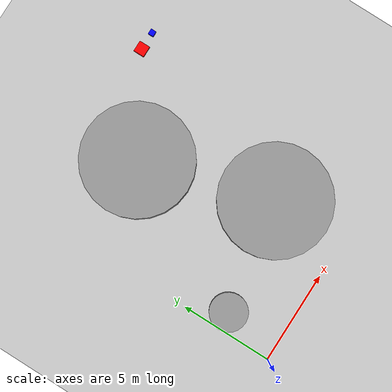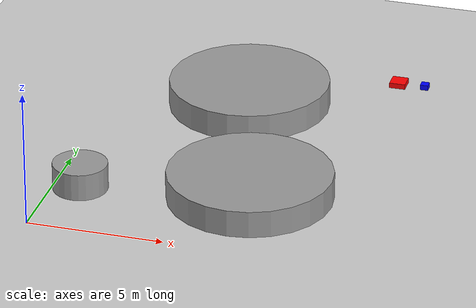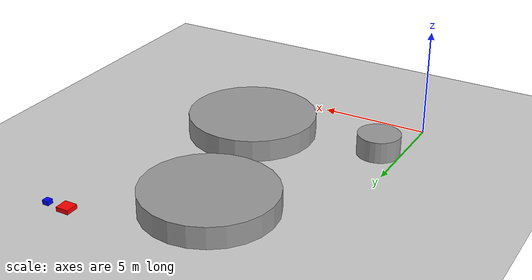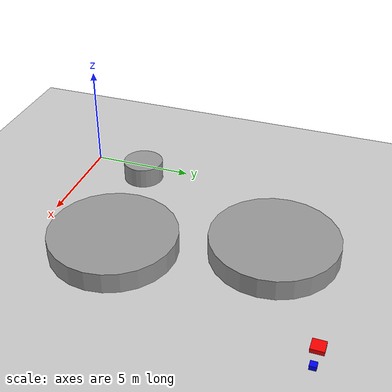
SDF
<sdf version="1.7">
 <world name="default">
  <light name="sun" type="directional">
   <pose>0 0 10 0 -0 0</pose>
   <diffuse>0.8 0.8 0.8 1</diffuse>
   <specular>0.2 0.2 0.2 1</specular>
   <attenuation>
    <range>1000</range>
    <constant>0.9</constant>
    <linear>0.01</linear>
    <quadratic>0.001</quadratic>
   </attenuation>
   <direction>-0.5 0.1 -0.9</direction>
   <spot><inner_angle>0</inner_angle><outer_angle>0</outer_angle><falloff>0</falloff></spot>
  </light>
  <model name="ground_plane">
   <static>1</static>
   <link name="link">
    <collision name="collision">
     <geometry><plane><normal>0 0 1</normal><size>100 100</size></plane></geometry>
     <surface>
      <contact><collide_bitmask>65535</collide_bitmask></contact>
      <friction><ode><mu>100</mu><mu2>50</mu2></ode></friction>
     </surface>
    </collision>
    <visual name="visual">
     <cast_shadows>0</cast_shadows>
     <geometry><plane><normal>0 0 1</normal><size>100 100</size></plane></geometry>
     <material>
      <script><uri>file://media/materials/scripts/gazebo.material</uri><name>Gazebo/Grey</name></script>
     </material>
    </visual>
   </link>
  </model>
  <gravity>0 0 -9.8</gravity>
  <magnetic_field>6e-06 2.3e-05 -4.2e-05</magnetic_field>
  <atmosphere type="adiabatic"/>
  <physics type="ode">
   <max_step_size>0.001</max_step_size>
   <real_time_factor>1</real_time_factor>
   <real_time_update_rate>1000</real_time_update_rate>
  </physics>
  <scene><ambient>0.4 0.4 0.4 1</ambient><background>0.7 0.7 0.7 1</background><shadows>1</shadows></scene>
  <audio><device>default</device></audio>
  <spherical_coordinates>
   <surface_model>EARTH_WGS84</surface_model>
   <latitude_deg>0</latitude_deg>
   <longitude_deg>0</longitude_deg>
   <elevation>0</elevation>
   <heading_deg>0</heading_deg>
  </spherical_coordinates>
  <model name="MRS">
   <link name="link_0">
    <inertial>
     <mass>1</mass>
     <inertia>
      <ixx>0.166667</ixx>
      <ixy>0</ixy>
      <ixz>0</ixz>
      <iyy>0.166667</iyy>
      <iyz>0</iyz>
      <izz>0.166667</izz>
     </inertia>
    </inertial>
    <pose>-0.5 -0 0.1 0 -0 0</pose>
    <visual name="visual">
     <geometry><box><size>0.6 0.6 0.2</size></box></geometry>
     <material>
      <lighting>1</lighting>
      <script><uri>file://media/materials/scripts/gazebo.material</uri><name>Gazebo/Grey</name></script>
      <shader type="pixel"><normal_map>__default__</normal_map></shader>
      <ambient>1 0 0 1</ambient>
      <diffuse>1 0 0 1</diffuse>
      <specular>1 0 0 1</specular>
      <emissive>0 0 0 1</emissive>
     </material>
    </visual>
    <collision name="collision">
     <geometry><box><size>0.6 0.6 0.2</size></box></geometry>
     <surface>
      <friction>
       <ode><mu>0</mu><mu2>0</mu2><fdir1>0 0 0</fdir1><slip1>0</slip1><slip2>0</slip2></ode>
       <torsional>
        <coefficient>0</coefficient>
        <patch_radius>0</patch_radius>
        <surface_radius>0</surface_radius>
        <use_patch_radius>1</use_patch_radius>
        <ode><slip>0</slip></ode>
       </torsional>
      </friction>
      <bounce><restitution_coefficient>0</restitution_coefficient><threshold>1e+06</threshold></bounce>
      <contact>
       <collide_without_contact>0</collide_without_contact>
       <collide_without_contact_bitmask>1</collide_without_contact_bitmask>
       <collide_bitmask>1</collide_bitmask>
       <ode>
        <soft_cfm>0</soft_cfm>
        <soft_erp>0.2</soft_erp>
        <kp>1e+13</kp>
        <kd>1</kd>
        <max_vel>0.01</max_vel>
        <min_depth>0</min_depth>
       </ode>
       <bullet>
        <split_impulse>1</split_impulse>
        <split_impulse_penetration_threshold>-0.01</split_impulse_penetration_threshold>
        <soft_cfm>0</soft_cfm>
        <soft_erp>0.2</soft_erp>
        <kp>1e+13</kp>
        <kd>1</kd>
       </bullet>
      </contact>
     </surface>
    </collision>
   </link>
   <link name="link_1">
    <inertial>
     <mass>1</mass>
     <inertia>
      <ixx>0.0108333</ixx>
      <ixy>0</ixy>
      <ixz>0</ixz>
      <iyy>0.0108333</iyy>
      <iyz>0</iyz>
      <izz>0.015</izz>
     </inertia>
    </inertial>
    <pose>0.5 -0 0.1 0 -0 0</pose>
    <visual name="visual">
     <geometry><box><size>0.3 0.3 0.2</size></box></geometry>
     <material>
      <lighting>1</lighting>
      <script><uri>file://media/materials/scripts/gazebo.material</uri><name>Gazebo/Grey</name></script>
      <shader type="pixel"><normal_map>__default__</normal_map></shader>
      <ambient>0 0 1 0.9</ambient>
      <diffuse>0 0 1 0.9</diffuse>
      <specular>0 0 1 0.9</specular>
      <emissive>0 0 1 0.9</emissive>
     </material>
    </visual>
    <collision name="collision">
     <geometry><box><size>0.3 0.3 0.2</size></box></geometry>
     <surface>
      <friction>
       <ode><mu>0</mu><mu2>0</mu2><fdir1>0 0 0</fdir1><slip1>0</slip1><slip2>0</slip2></ode>
       <torsional>
        <coefficient>0</coefficient>
        <patch_radius>0</patch_radius>
        <surface_radius>0</surface_radius>
        <use_patch_radius>1</use_patch_radius>
        <ode><slip>0</slip></ode>
       </torsional>
      </friction>
      <bounce><restitution_coefficient>0</restitution_coefficient><threshold>1e+06</threshold></bounce>
      <contact>
       <collide_without_contact>0</collide_without_contact>
       <collide_without_contact_bitmask>1</collide_without_contact_bitmask>
       <collide_bitmask>1</collide_bitmask>
       <ode>
        <soft_cfm>0</soft_cfm>
        <soft_erp>0.2</soft_erp>
        <kp>1e+13</kp>
        <kd>1</kd>
        <max_vel>0.01</max_vel>
        <min_depth>0</min_depth>
       </ode>
       <bullet>
        <split_impulse>1</split_impulse>
        <split_impulse_penetration_threshold>-0.01</split_impulse_penetration_threshold>
        <soft_cfm>0</soft_cfm>
        <soft_erp>0.2</soft_erp>
        <kp>1e+13</kp>
        <kd>1</kd>
       </bullet>
      </contact>
     </surface>
    </collision>
   </link>
   <static>0</static>
   <plugin name="follower_force" filename="libgazebo_ros_force.so">
    <ros><namespace>/follower_cf</namespace><remapping>follower_force:=follower_force</remapping></ros>
    <link_name>link_1</link_name>
    <force_frame>world</force_frame>
   </plugin>
   <plugin name="follower_odom" filename="libgazebo_ros_p3d.so">
    <ros><namespace>/follower_odom</namespace><remapping>odom:=follower_odom</remapping></ros>
    <body_name>link_1</body_name>
    <update_rate>0.0</update_rate>
    <xyz_offset>0 0 -0.25</xyz_offset>
    <rpy_offset>0 0 0</rpy_offset>
    <gaussian_noise>0</gaussian_noise>
   </plugin>
   <plugin name="leader_force" filename="libgazebo_ros_force.so">
    <ros><namespace>/leader_cf</namespace><remapping>leader_force:=leader_force</remapping></ros>
    <link_name>link_0</link_name>
    <force_frame>world</force_frame>
   </plugin>
   <plugin name="leader_odom" filename="libgazebo_ros_p3d.so">
    <ros><namespace>/leader_odom</namespace><remapping>odom:=leader_odom</remapping></ros>
    <body_name>link_0</body_name>
    <update_rate>0.0</update_rate>
    <xyz_offset>0 0 -0.25</xyz_offset>
    <rpy_offset>0 0 0</rpy_offset>
    <gaussian_noise>0</gaussian_noise>
   </plugin>
   <pose>10.5 14 -0 0 -0 0</pose>
  </model>
  <model name="unit_cylinder">
   <link name="link">
    <inertial>
     <mass>1000</mass>
     <inertia><ixx>2333.33</ixx><ixy>0</ixy><ixz>0</ixz><iyy>2333.33</iyy><iyz>0</iyz><izz>4500</izz></inertia>
    </inertial>
    <pose>5 11 0.5 0 -0 0</pose>
    <visual name="visual">
     <geometry><cylinder><radius>3</radius><length>1</length></cylinder></geometry>
     <material>
      <script><name>Gazebo/Grey</name><uri>file://media/materials/scripts/gazebo.material</uri></script>
      <shader type="pixel"><normal_map>__default__</normal_map></shader>
      <ambient>0.467 0.463 0.482 1</ambient>
      <diffuse>0.467 0.463 0.482 1</diffuse>
      <specular>0.467 0.463 0.482 1</specular>
      <emissive>0.467 0.463 0.482 1</emissive>
     </material>
    </visual>
    <collision name="collision">
     <geometry><cylinder><radius>3</radius><length>1</length></cylinder></geometry>
     <surface>
      <friction>
       <ode><mu>1</mu><mu2>1</mu2><fdir1>0 0 0</fdir1><slip1>0</slip1><slip2>0</slip2></ode>
       <torsional>
        <coefficient>1</coefficient>
        <patch_radius>0</patch_radius>
        <surface_radius>0</surface_radius>
        <use_patch_radius>1</use_patch_radius>
        <ode><slip>0</slip></ode>
       </torsional>
      </friction>
      <bounce><restitution_coefficient>0</restitution_coefficient><threshold>1e+06</threshold></bounce>
      <contact>
       <collide_without_contact>0</collide_without_contact>
       <collide_without_contact_bitmask>1</collide_without_contact_bitmask>
       <collide_bitmask>1</collide_bitmask>
       <ode>
        <soft_cfm>0</soft_cfm>
        <soft_erp>0.2</soft_erp>
        <kp>1e+13</kp>
        <kd>1</kd>
        <max_vel>0.01</max_vel>
        <min_depth>0</min_depth>
       </ode>
       <bullet>
        <split_impulse>1</split_impulse>
        <split_impulse_penetration_threshold>-0.01</split_impulse_penetration_threshold>
        <soft_cfm>0</soft_cfm>
        <soft_erp>0.2</soft_erp>
        <kp>1e+13</kp>
        <kd>1</kd>
       </bullet>
      </contact>
     </surface>
    </collision>
    <sensor name="contact_1" type="contact">
     <contact><collision>collision</collision><topic>__default_topic__</topic></contact>
     <plugin name="collision_1" filename="libgazebo_ros_bumper.so">
      <ros><namespace>collision_1</namespace><remapping>bumper_states:=collision</remapping></ros>
     </plugin>
    </sensor>
   </link>
   <static>1</static>
   <pose>0 0 0.001202 0 -0 0</pose>
  </model>
  <model name="unit_cylinder_0">
   <link name="link">
    <inertial>
     <mass>1000</mass>
     <inertia><ixx>2333.33</ixx><ixy>0</ixy><ixz>0</ixz><iyy>2333.33</iyy><iyz>0</iyz><izz>4500</izz></inertia>
    </inertial>
    <pose>7 4 0.5 0 -0 0</pose>
    <visual name="visual">
     <geometry><cylinder><radius>3</radius><length>1</length></cylinder></geometry>
     <material>
      <script><name>Gazebo/Grey</name><uri>file://media/materials/scripts/gazebo.material</uri></script>
      <shader type="pixel"><normal_map>__default__</normal_map></shader>
      <ambient>0.467 0.463 0.482 1</ambient>
      <diffuse>0.467 0.463 0.482 1</diffuse>
      <specular>0.467 0.463 0.482 1</specular>
      <emissive>0.467 0.463 0.482 1</emissive>
     </material>
    </visual>
    <collision name="collision">
     <geometry><cylinder><radius>3</radius><length>1</length></cylinder></geometry>
     <surface>
      <friction>
       <ode><mu>1</mu><mu2>1</mu2><fdir1>0 0 0</fdir1><slip1>0</slip1><slip2>0</slip2></ode>
       <torsional>
        <coefficient>1</coefficient>
        <patch_radius>0</patch_radius>
        <surface_radius>0</surface_radius>
        <use_patch_radius>1</use_patch_radius>
        <ode><slip>0</slip></ode>
       </torsional>
      </friction>
      <bounce><restitution_coefficient>0</restitution_coefficient><threshold>1e+06</threshold></bounce>
      <contact>
       <collide_without_contact>0</collide_without_contact>
       <collide_without_contact_bitmask>1</collide_without_contact_bitmask>
       <collide_bitmask>1</collide_bitmask>
       <ode>
        <soft_cfm>0</soft_cfm>
        <soft_erp>0.2</soft_erp>
        <kp>1e+13</kp>
        <kd>1</kd>
        <max_vel>0.01</max_vel>
        <min_depth>0</min_depth>
       </ode>
       <bullet>
        <split_impulse>1</split_impulse>
        <split_impulse_penetration_threshold>-0.01</split_impulse_penetration_threshold>
        <soft_cfm>0</soft_cfm>
        <soft_erp>0.2</soft_erp>
        <kp>1e+13</kp>
        <kd>1</kd>
       </bullet>
      </contact>
     </surface>
    </collision>
    <sensor name="contact_2" type="contact">
     <contact><collision>collision</collision><topic>__default_topic__</topic></contact>
     <plugin name="collision_2" filename="libgazebo_ros_bumper.so">
      <ros><namespace>collision_2</namespace><remapping>bumper_states:=collision</remapping></ros>
     </plugin>
    </sensor>
   </link>
   <static>1</static>
   <pose>0 0 0.012472 0 -0 0</pose>
  </model>
  <model name="unit_cylinder_1_1">
   <link name="link">
    <inertial>
     <mass>1000</mass>
     <inertia><ixx>333.333</ixx><ixy>0</ixy><ixz>0</ixz><iyy>333.333</iyy><iyz>0</iyz><izz>500</izz></inertia>
    </inertial>
    <pose>1 3 0.5 0 -0 0</pose>
    <visual name="visual">
     <geometry><cylinder><radius>1</radius><length>1</length></cylinder></geometry>
     <material>
      <script><name>Gazebo/Grey</name><uri>file://media/materials/scripts/gazebo.material</uri></script>
      <shader type="pixel"><normal_map>__default__</normal_map></shader>
      <ambient>0.467 0.463 0.482 1</ambient>
      <diffuse>0.467 0.463 0.482 1</diffuse>
      <specular>0.467 0.463 0.482 1</specular>
      <emissive>0.467 0.463 0.482 1</emissive>
     </material>
    </visual>
    <collision name="collision">
     <geometry><cylinder><radius>1</radius><length>1</length></cylinder></geometry>
     <surface>
      <friction>
       <ode><mu>1</mu><mu2>1</mu2><fdir1>0 0 0</fdir1><slip1>0</slip1><slip2>0</slip2></ode>
       <torsional>
        <coefficient>1</coefficient>
        <patch_radius>0</patch_radius>
        <surface_radius>0</surface_radius>
        <use_patch_radius>1</use_patch_radius>
        <ode><slip>0</slip></ode>
       </torsional>
      </friction>
      <bounce><restitution_coefficient>0</restitution_coefficient><threshold>1e+06</threshold></bounce>
      <contact>
       <collide_without_contact>0</collide_without_contact>
       <collide_without_contact_bitmask>1</collide_without_contact_bitmask>
       <collide_bitmask>1</collide_bitmask>
       <ode>
        <soft_cfm>0</soft_cfm>
        <soft_erp>0.2</soft_erp>
        <kp>1e+13</kp>
        <kd>1</kd>
        <max_vel>0.01</max_vel>
        <min_depth>0</min_depth>
       </ode>
       <bullet>
        <split_impulse>1</split_impulse>
        <split_impulse_penetration_threshold>-0.01</split_impulse_penetration_threshold>
        <soft_cfm>0</soft_cfm>
        <soft_erp>0.2</soft_erp>
        <kp>1e+13</kp>
        <kd>1</kd>
       </bullet>
      </contact>
     </surface>
    </collision>
    <sensor name="contact_4" type="contact">
     <contact><collision>collision</collision><topic>__default_topic__</topic></contact>
     <plugin name="collision_4" filename="libgazebo_ros_bumper.so">
      <ros><namespace>collision_4</namespace><remapping>bumper_states:=collision</remapping></ros>
     </plugin>
    </sensor>
   </link>
   <static>1</static>
   <pose>0 0 0.001241 0 -0 0</pose>
  </model>
 </world>
</sdf>
